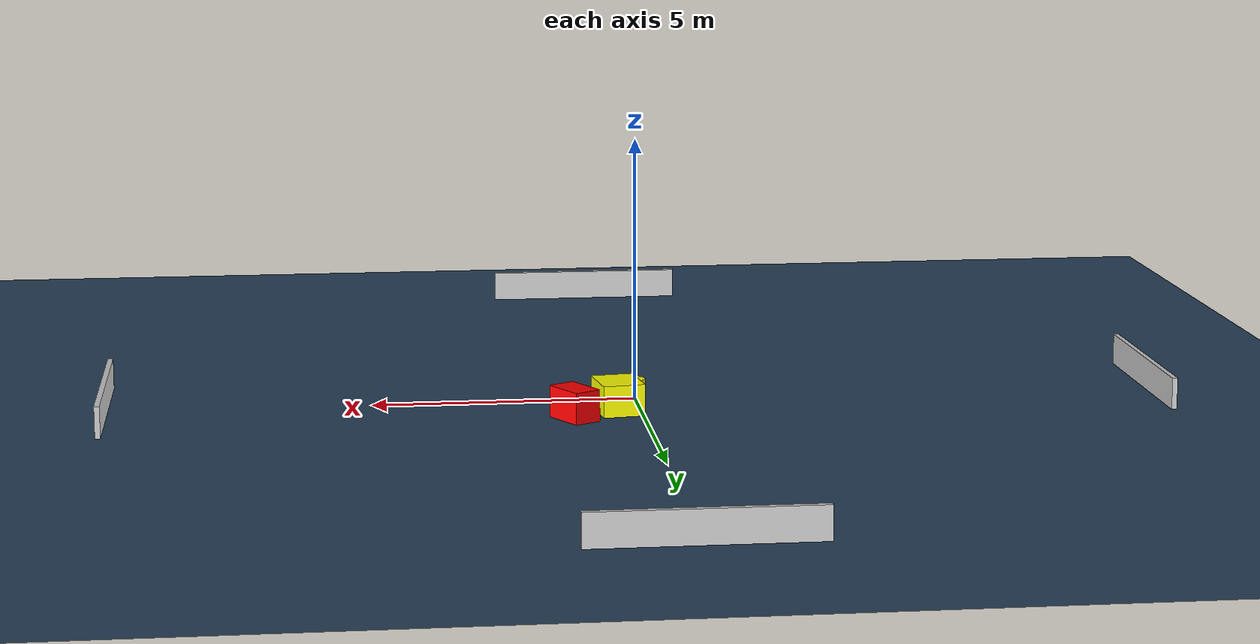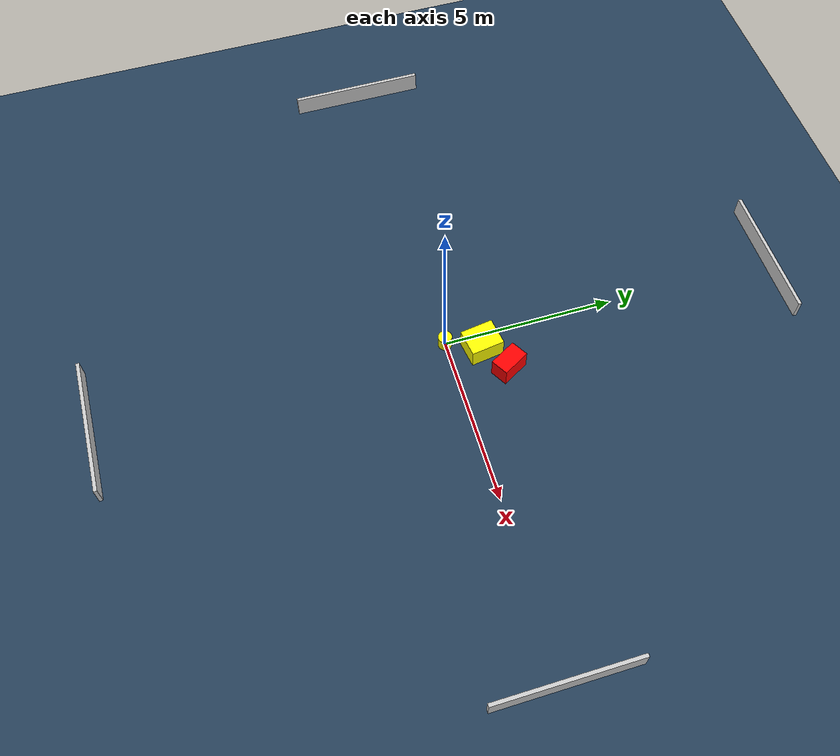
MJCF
<?xml version="1.0" ?>
<mujoco model="generated_environment">
  <option timestep="0.01" integrator="RK4" cone="elliptic"/>
  <default>
    <geom density="1"/>
  </default>
  <asset>
    <texture builtin="gradient" height="3072" name="skybox" rgb1="0.3 0.5 0.7" rgb2="0 0 0" type="skybox" width="512"/>
    <texture builtin="checker" height="300" name="groundplane" rgb1="0.2 0.3 0.4" rgb2="0.1 0.2 0.3" type="2d" width="300"/>
    <material name="groundplane" reflectance="0.2" texrepeat="5 5" texture="groundplane"/>
  </asset>
  <worldbody>
    <light dir="0 0 -1" directional="true" pos="0 0 1.5"/>
    <geom condim="3" friction="0.5 0.005 0.001" material="groundplane" name="floor" pos="0 0 0" size="0 0 0.05" type="plane"/>
    <body name="walls">
      <geom name="wall_1" condim="4" pos="-10.0 0.0 0.3" rgba="0.800000011920929 0.800000011920929 0.800000011920929 1.0" size="0.05 2.0 0.3" type="box"/>
      <geom name="wall_2" condim="4" pos="10.0 0.0 0.3" rgba="0.800000011920929 0.800000011920929 0.800000011920929 1.0" size="0.05 2.0 0.3" type="box"/>
      <geom name="wall_3" condim="4" pos="0.0 -10.0 0.3" rgba="0.800000011920929 0.800000011920929 0.800000011920929 1.0" size="2.0 0.05 0.3" type="box"/>
      <geom name="wall_4" condim="4" pos="0.0 10.0 0.3" rgba="0.800000011920929 0.800000011920929 0.800000011920929 1.0" size="2.0 0.05 0.3" type="box"/>
    </body>
    <body name="robot">
      <joint name="joint_x" type="slide" pos="0 0 0" axis="1 0 0"/>
      <joint name="joint_y" type="slide" pos="0 0 0" axis="0 1 0"/>
      <geom name="robot" type="cylinder" pos="0.0 0.0 0.2" size="0.2 0.2 0.0" mass="5.0" friction="1.0 0.005 0.0001" condim="4" rgba="1.0 1.0 0.0 1.0"/>
    </body>
    <body name="obstacle_1_movable">
      <geom name="obstacle_1_movable" condim="4" pos="0.4284391021619497 0.9579418837722613 0.3" euler="0 0 188.37731022214882" friction="0.0 0.005 0.001" rgba="1.0 1.0 0.0 1.0" size="0.3992532567521806 0.48299497949779835 0.3" type="box" mass="0.1"/>
      <joint type="free"/>
    </body>
    <body name="obstacle_2_static">
      <geom name="obstacle_2_static" condim="4" pos="1.2934994643207405 1.4755693476730454 0.3" euler="0 0 209.97444843021313" friction="0.0 0.005 0.001" rgba="1.0 0.0 0.0 1.0" size="0.26593885458855293 0.42724466041722853 0.3" type="box"/>
    </body>
  </worldbody>
  <actuator>
    <motor name="actuator_x" joint="joint_x" gear="1" ctrlrange="-1 1"/>
    <motor name="actuator_y" joint="joint_y" gear="1" ctrlrange="-1 1"/>
  </actuator>
</mujoco>
